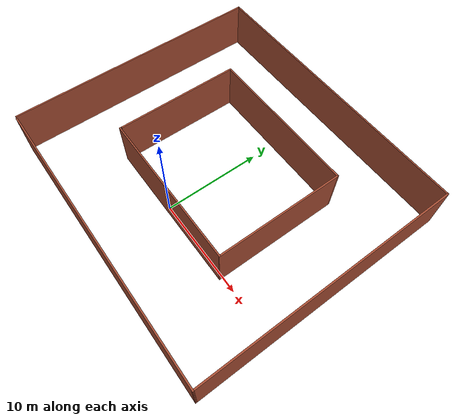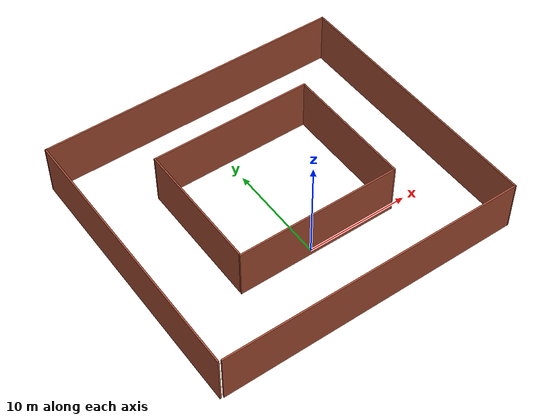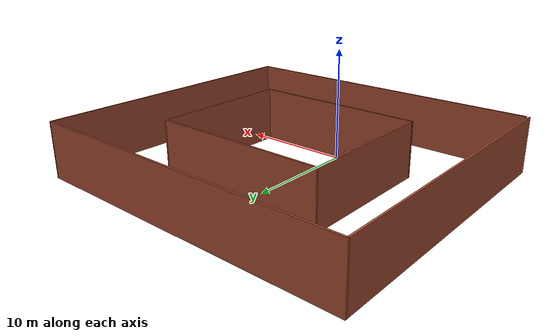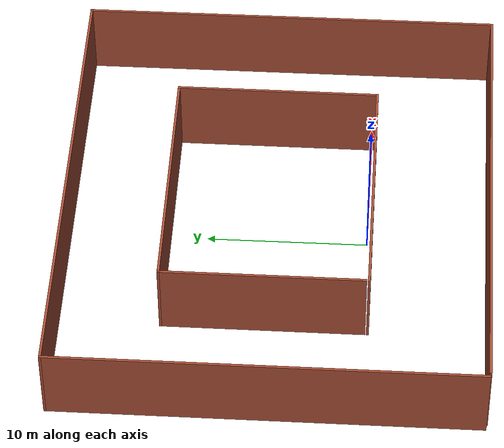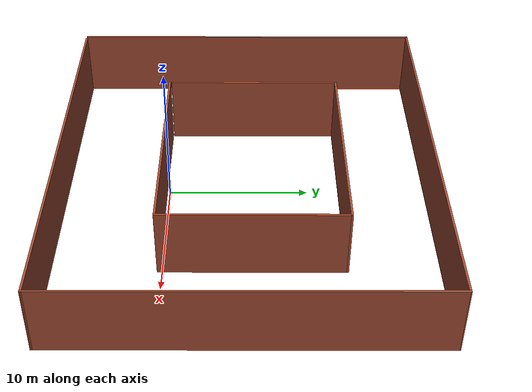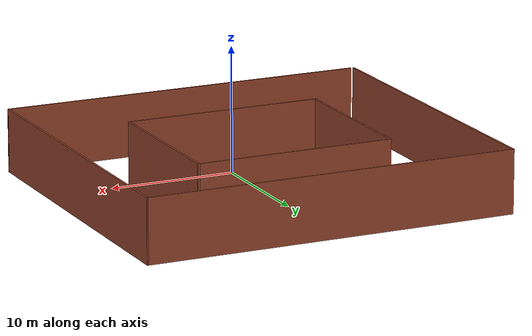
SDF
<?xml version='1.0'?>
<sdf version='1.6'>
  <model name='wall_sdf'>
    <pose frame=''>0.5541 5.5746 0 0 -0 0</pose>
    <link name='Wall_17'>
      <collision name='Wall_17_Collision'>
        <geometry>
          <box>
            <size>29.25 0.15 5</size>
          </box>
        </geometry>
        <pose frame=''>0 0 2.5 0 -0 0</pose>
      </collision>
      <visual name='Wall_17_Visual'>
        <pose frame=''>0 0 2.5 0 -0 0</pose>
        <geometry>
          <box>
            <size>29.25 0.15 5</size>
          </box>
        </geometry>
        <material>
          <script>
            <uri>file://media/materials/scripts/gazebo.material</uri>
            <name>Gazebo/Bricks</name>
          </script>
          <ambient>1 1 1 1</ambient>
        </material>
        <meta>
          <layer>0</layer>
        </meta>
      </visual>
      <pose frame=''>0.1599 -13.0851 0 0 -0 3.4e-05</pose>
    </link>
    <link name='Wall_18'>
      <collision name='Wall_18_Collision'>
        <geometry>
          <box>
            <size>26.3201 0.15 5</size>
          </box>
        </geometry>
        <pose frame=''>0 0 2.5 0 -0 0</pose>
      </collision>
      <visual name='Wall_18_Visual'>
        <pose frame=''>0 0 2.5 0 -0 0</pose>
        <geometry>
          <box>
            <size>26.3201 0.15 5</size>
          </box>
        </geometry>
        <material>
          <script>
            <uri>file://media/materials/scripts/gazebo.material</uri>
            <name>Gazebo/Bricks</name>
          </script>
          <ambient>1 1 1 1</ambient>
        </material>
        <meta>
          <layer>0</layer>
        </meta>
      </visual>
      <pose frame=''>14.6749 0.000401 0 0 -0 1.57347</pose>
    </link>
    <link name='Wall_19'>
      <collision name='Wall_19_Collision'>
        <geometry>
          <box>
            <size>29.5 0.15 5</size>
          </box>
        </geometry>
        <pose frame=''>0 0 2.5 0 -0 0</pose>
      </collision>
      <visual name='Wall_19_Visual'>
        <pose frame=''>0 0 2.5 0 -0 0</pose>
        <geometry>
          <box>
            <size>29.5 0.15 5</size>
          </box>
        </geometry>
        <material>
          <script>
            <uri>file://media/materials/scripts/gazebo.material</uri>
            <name>Gazebo/Bricks</name>
          </script>
          <ambient>1 1 1 1</ambient>
        </material>
        <meta>
          <layer>0</layer>
        </meta>
      </visual>
      <pose frame=''>-0.0351 13.0854 0 0 -0 3.14159</pose>
    </link>
    <link name='Wall_20'>
      <collision name='Wall_20_Collision'>
        <geometry>
          <box>
            <size>26.25 0.15 5</size>
          </box>
        </geometry>
        <pose frame=''>0 0 2.5 0 -0 0</pose>
      </collision>
      <visual name='Wall_20_Visual'>
        <pose frame=''>0 0 2.5 0 -0 0</pose>
        <geometry>
          <box>
            <size>26.25 0.15 5</size>
          </box>
        </geometry>
        <material>
          <script>
            <uri>file://media/materials/scripts/gazebo.material</uri>
            <name>Gazebo/Bricks</name>
          </script>
          <ambient>1 1 1 1</ambient>
        </material>
        <meta>
          <layer>0</layer>
        </meta>
      </visual>
      <pose frame=''>-14.7101 0.035402 0 0 -0 -1.5708</pose>
    </link>
    <link name='Wall_23'>
      <collision name='Wall_23_Collision'>
        <geometry>
          <box>
            <size>15.75 0.15 5</size>
          </box>
        </geometry>
        <pose frame=''>0 0 2.5 0 -0 0</pose>
      </collision>
      <visual name='Wall_23_Visual'>
        <pose frame=''>0 0 2.5 0 -0 0</pose>
        <geometry>
          <box>
            <size>15.75 0.15 5</size>
          </box>
        </geometry>
        <material>
          <script>
            <uri>file://media/materials/scripts/gazebo.material</uri>
            <name>Gazebo/Bricks</name>
          </script>
          <ambient>1 1 1 1</ambient>
        </material>
        <meta>
          <layer>0</layer>
        </meta>
      </visual>
      <pose frame=''>0.0229 -5.8436 0 0 -0 0</pose>
    </link>
    <link name='Wall_24'>
      <collision name='Wall_24_Collision'>
        <geometry>
          <box>
            <size>12.786 0.15 5</size>
          </box>
        </geometry>
        <pose frame=''>0 0 2.5 0 -0 0</pose>
      </collision>
      <visual name='Wall_24_Visual'>
        <pose frame=''>0 0 2.5 0 -0 0</pose>
        <geometry>
          <box>
            <size>12.786 0.15 5</size>
          </box>
        </geometry>
        <material>
          <script>
            <uri>file://media/materials/scripts/gazebo.material</uri>
            <name>Gazebo/Bricks</name>
          </script>
          <ambient>1 1 1 1</ambient>
        </material>
        <meta>
          <layer>0</layer>
        </meta>
      </visual>
      <pose frame=''>7.8229 0.474401 0 0 -0 1.5708</pose>
    </link>
    <link name='Wall_25'>
      <collision name='Wall_25_Collision'>
        <geometry>
          <box>
            <size>15.75 0.15 5</size>
          </box>
        </geometry>
        <pose frame=''>0 0 2.5 0 -0 0</pose>
      </collision>
      <visual name='Wall_25_Visual'>
        <pose frame=''>0 0 2.5 0 -0 0</pose>
        <geometry>
          <box>
            <size>15.75 0.15 5</size>
          </box>
        </geometry>
        <material>
          <script>
            <uri>file://media/materials/scripts/gazebo.material</uri>
            <name>Gazebo/Bricks</name>
          </script>
          <ambient>1 1 1 1</ambient>
        </material>
        <meta>
          <layer>0</layer>
        </meta>
      </visual>
      <pose frame=''>0.0229 6.7924 0 0 -0 3.14159</pose>
    </link>
    <link name='Wall_26'>
      <collision name='Wall_26_Collision'>
        <geometry>
          <box>
            <size>12.571 0.15 5</size>
          </box>
        </geometry>
        <pose frame=''>0 0 2.5 0 -0 0</pose>
      </collision>
      <visual name='Wall_26_Visual'>
        <pose frame=''>0 0 2.5 0 -0 0</pose>
        <geometry>
          <box>
            <size>12.571 0.15 5</size>
          </box>
        </geometry>
        <material>
          <script>
            <uri>file://media/materials/scripts/gazebo.material</uri>
            <name>Gazebo/Bricks</name>
          </script>
          <ambient>1 1 1 1</ambient>
        </material>
        <meta>
          <layer>0</layer>
        </meta>
      </visual>
      <pose frame=''>-7.7771 0.581902 0 0 -0 -1.5708</pose>
    </link>
    <static>1</static>
  </model>
</sdf>
